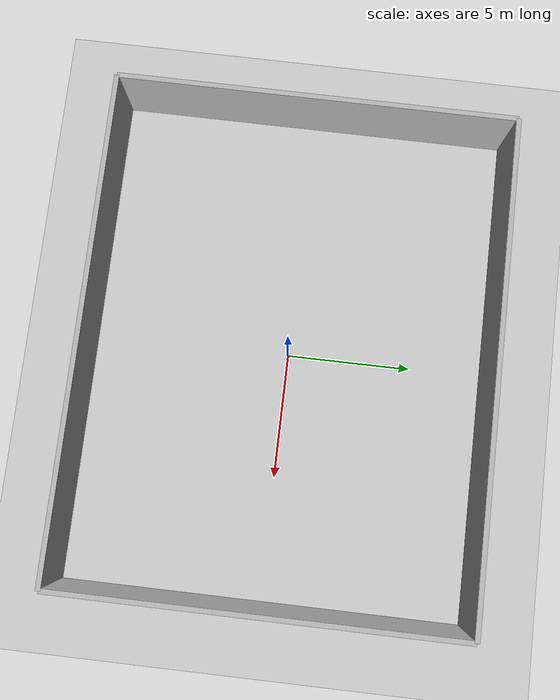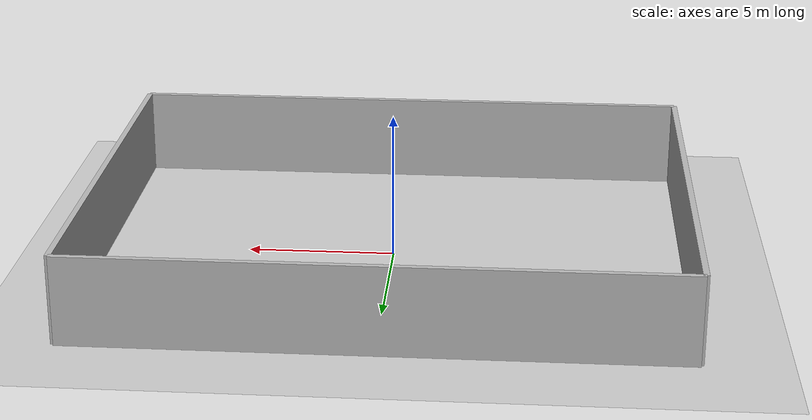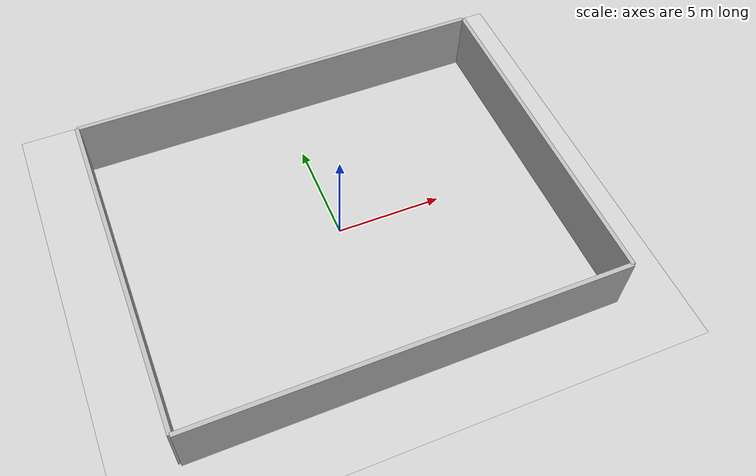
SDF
<sdf version='1.7'>
  <world name='default'>

    <!-- LIGHT -->
    <light name='sun' type='directional'>
      <pose>0 0 10 0 0 0</pose>
      <diffuse>1 1 1 1</diffuse>
      <direction>-0.5 0.1 -1</direction>
    </light>

    <!-- GROUND -->
    <model name='ground_plane'>
      <static>true</static>
      <link name='link'>
        <collision name='collision'>
          <geometry>
            <plane>
              <normal>0 0 1</normal>
              <size>100 100</size>
            </plane>
          </geometry>
        </collision>
        <visual name='visual'>
          <geometry>
            <plane>
              <normal>0 0 1</normal>
              <size>100 100</size>
            </plane>
          </geometry>
        </visual>
      </link>
    </model>

    <!-- PHYSICS -->
    <gravity>0 0 -9.8</gravity>

    <!-- WALLS -->

    <model name='wall1'>
      <static>true</static>
      <link name='link'>
        <pose>0 8 1.5 0 0 0</pose>
        <collision name='collision'>
          <geometry><box><size>20 0.2 3</size></box></geometry>
        </collision>
        <visual name='visual'>
          <geometry><box><size>20 0.2 3</size></box></geometry>
        </visual>
      </link>
    </model>

    <model name='wall2'>
      <static>true</static>
      <link name='link'>
        <pose>0 -8 1.5 0 0 0</pose>
        <collision name='collision'>
          <geometry><box><size>20 0.2 3</size></box></geometry>
        </collision>
        <visual name='visual'>
          <geometry><box><size>20 0.2 3</size></box></geometry>
        </visual>
      </link>
    </model>

    <model name='wall3'>
      <static>true</static>
      <link name='link'>
        <pose>-10 0 1.5 0 0 1.57</pose>
        <collision name='collision'>
          <geometry><box><size>16 0.2 3</size></box></geometry>
        </collision>
        <visual name='visual'>
          <geometry><box><size>16 0.2 3</size></box></geometry>
        </visual>
      </link>
    </model>

    <model name='wall4'>
      <static>true</static>
      <link name='link'>
        <pose>10 0 1.5 0 0 1.57</pose>
        <collision name='collision'>
          <geometry><box><size>16 0.2 3</size></box></geometry>
        </collision>
        <visual name='visual'>
          <geometry><box><size>16 0.2 3</size></box></geometry>
        </visual>
      </link>
    </model>

  </world>
</sdf>
